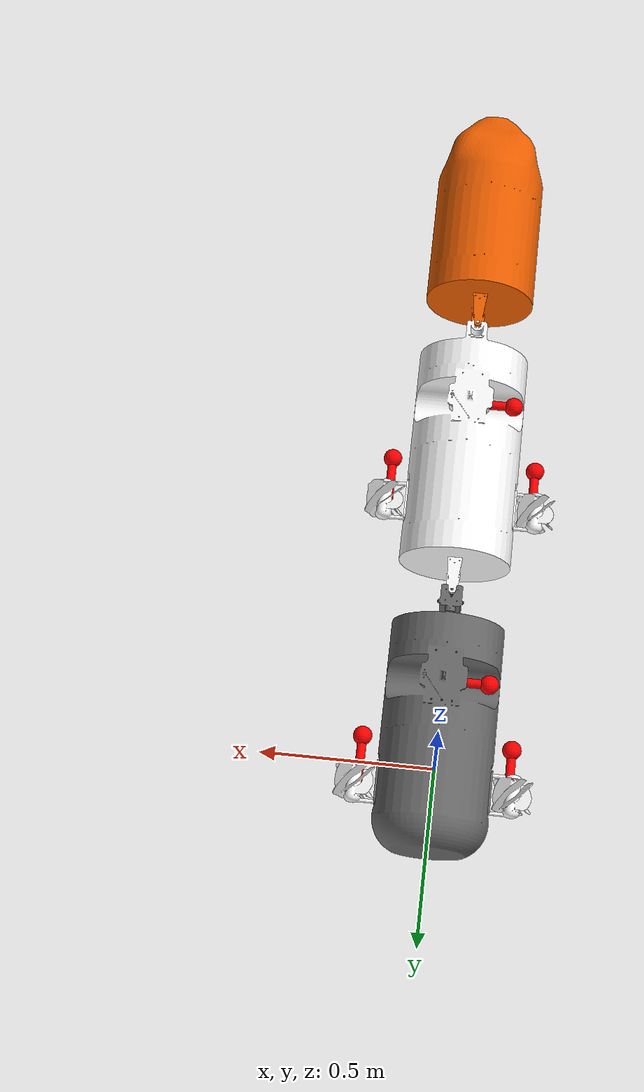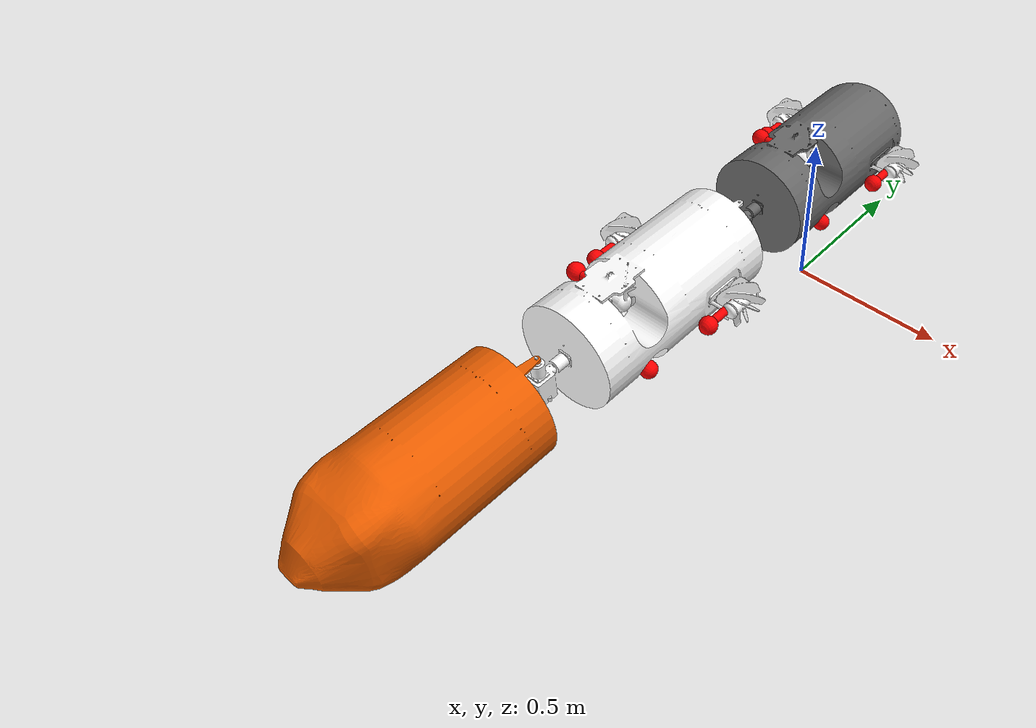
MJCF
<mujoco model="sw2urdf_ws2d_view">
  <compiler angle="radian" meshdir="meshes"/>
  <option timestep="0.002" gravity="0 0 0" density="1000" viscosity="0.0009" integrator="implicitfast"/>

  <visual>
    <global offwidth="1280" offheight="720"/>
  </visual>

  <default>
    <joint damping="0.02" armature="0.0001"/>
    <geom friction="0.8 0.02 0.001"/>
  </default>

  <asset>
    <mesh name="backDrivenCabin_mesh" file="backDrivenCabin.STL"/>
    <mesh name="frontDrivenCabin_mesh" file="frontDrivenCabin.STL"/>
    <mesh name="headCabin_mesh" file="headCabin.STL"/>
    <mesh name="FR_mesh" file="FR.STL"/>
    <mesh name="FL_mesh" file="FL.STL"/>
    <mesh name="FU_mesh" file="FU.STL"/>
    <mesh name="FD_mesh" file="FD.STL"/>
    <mesh name="BR_mesh" file="BR.STL"/>
    <mesh name="BL_mesh" file="BL.STL"/>
    <mesh name="BU_mesh" file="BU.STL"/>
    <mesh name="BD_mesh" file="BD.STL"/>
    <material name="backDrivenCabin_mat" rgba="0.411764705882353 0.411764705882353 0.411764705882353 1"/>
    <material name="frontDrivenCabin_mat" rgba="1 1 1 1"/>
    <material name="headCabin_mat" rgba="0.933333333333333 0.372549019607843 0 1"/>
    <material name="FR_mat" rgba="1 1 1 1"/>
    <material name="FL_mat" rgba="1 1 1 1"/>
    <material name="FU_mat" rgba="1 1 1 1"/>
    <material name="FD_mat" rgba="1 1 1 1"/>
    <material name="BR_mat" rgba="1 1 1 1"/>
    <material name="BL_mat" rgba="1 1 1 1"/>
    <material name="BU_mat" rgba="1 1 1 1"/>
    <material name="BD_mat" rgba="1 1 1 1"/>
    <texture name="grid" type="2d" builtin="checker" width="512" height="512"
             rgb1="0.18 0.22 0.27" rgb2="0.28 0.34 0.40"/>
    <material name="grid" texture="grid" texrepeat="8 8" reflectance="0.15"/>
  </asset>

  <worldbody>
    <light pos="0 -4 3" dir="0 1 -1" diffuse="0.8 0.8 0.8"/>
    <camera name="view" pos="0.8 -3.0 1.2" xyaxes="0.96 0.28 0 -0.12 0.42 0.90"/>
    <body name="backDrivenCabin" pos="0 0 0.45">
      <freejoint/>
      <inertial pos="-1.58703085886e-07 -0.0462855357368 -0.000838936474934"
                mass="5.94333504291"
                fullinertia="0.0506503044463 0.0787556572438 0.060882315016 4.3394112654e-08 -0.000278613283706 -4.43469112914e-06"/>
      <geom name="backDrivenCabin_visual" type="mesh" mesh="backDrivenCabin_mesh"
            material="backDrivenCabin_mat" contype="0" conaffinity="0"/>
      <geom name="backDrivenCabin_collision" type="mesh" mesh="backDrivenCabin_mesh"
            rgba="0.6 0.6 0.6 0.18"/>
      <body name="frontDrivenCabin" pos="0 -0.388 0" quat="1 0 0 0">
        <joint name="J1" type="hinge" axis="0 0 1" limited="false"/>
        <inertial pos="-1.63127334655e-07 -0.419439622488 0.00195154287583"
                  mass="6.28907190774"
                  fullinertia="0.0538005603257 0.0847113379619 0.0639791683968 4.33958813501e-08 -0.000278613283706 -4.25365720591e-06"/>
        <geom name="frontDrivenCabin_visual" type="mesh" mesh="frontDrivenCabin_mesh"
              material="frontDrivenCabin_mat" contype="0" conaffinity="0"/>
        <geom name="frontDrivenCabin_collision" type="mesh" mesh="frontDrivenCabin_mesh"
              rgba="0.6 0.6 0.6 0.18"/>
        <body name="headCabin" pos="0 -0.776 0" quat="0.707105482511 0.707108079859 0 0">
          <joint name="J2" type="hinge" axis="0 1 0" limited="false"/>
          <inertial pos="2.8267095895e-06 0.00500867328442 0.326719213717"
                    mass="4.40387857645"
                    fullinertia="0.057456177876 0.0574181363968 0.0780729338671 1.99081524582e-07 -1.35519957731e-07 1.24168050548e-07"/>
          <geom name="headCabin_visual" type="mesh" mesh="headCabin_mesh"
                material="headCabin_mat" contype="0" conaffinity="0"/>
          <geom name="headCabin_collision" type="mesh" mesh="headCabin_mesh"
                rgba="0.6 0.6 0.6 0.18"/>
        </body>
        <body name="FR" pos="0.19499977134 -0.248658356703 0.00251455813324" quat="-0.49963721069 0.49963721069 -0.500362526269 -0.500362526269">
        <site name="FR_site" pos="0 0 0" type="sphere" size="0.001" rgba="0 1 1 0"/>
        <site name="FR_thrust_axis" pos="0 0 -0.12" type="sphere" size="0.025" rgba="1 0 0 1"/>
        <geom name="FR_thrust_axis_marker" type="capsule" fromto="0 0 0 0 0 -0.12" size="0.012"
              rgba="1 0 0 1" contype="0" conaffinity="0"/>
          <inertial pos="2.67719476335e-06 -0.00821452737266 0.00191068038065"
                    mass="0.163699075202"
                    fullinertia="0.00012995415944 0.000119854046884 9.74198043808e-05 -1.46424862866e-08 -6.27270268619e-12 -1.94024404784e-08"/>
          <geom name="FR_visual" type="mesh" mesh="FR_mesh"
                material="FR_mat" contype="0" conaffinity="0"/>
          <geom name="FR_collision" type="mesh" mesh="FR_mesh"
                rgba="0.6 0.6 0.6 0.18"/>
        </body>
        <body name="FL" pos="-0.195000249703 -0.248658356703 0.00248554551771" quat="0.500362526269 -0.500362526269 -0.49963721069 -0.49963721069">
        <site name="FL_site" pos="0 0 0" type="sphere" size="0.001" rgba="0 1 1 0"/>
        <site name="FL_thrust_axis" pos="0 0 -0.12" type="sphere" size="0.025" rgba="1 0 0 1"/>
        <geom name="FL_thrust_axis_marker" type="capsule" fromto="0 0 0 0 0 -0.12" size="0.012"
              rgba="1 0 0 1" contype="0" conaffinity="0"/>
          <inertial pos="2.67719476338e-06 -0.00821452737266 0.00191068038065"
                    mass="0.163699075202"
                    fullinertia="0.00012995415944 0.000119854046884 9.74198043808e-05 -1.46424862866e-08 -6.2727024971e-12 -1.94024404785e-08"/>
          <geom name="FL_visual" type="mesh" mesh="FL_mesh"
                material="FL_mat" contype="0" conaffinity="0"/>
          <geom name="FL_collision" type="mesh" mesh="FL_mesh"
                rgba="0.6 0.6 0.6 0.18"/>
        </body>
        <body name="FU" pos="-0.00100023918168 -0.51217286301 -0.0949999376529" quat="0.49963721069 -0.500362526269 -0.49963721069 0.500362526269">
        <site name="FU_site" pos="0 0 0" type="sphere" size="0.001" rgba="0 1 1 0"/>
        <site name="FU_thrust_axis" pos="0 0 -0.12" type="sphere" size="0.025" rgba="1 0 0 1"/>
        <geom name="FU_thrust_axis_marker" type="capsule" fromto="0 0 0 0 0 -0.12" size="0.012"
              rgba="1 0 0 1" contype="0" conaffinity="0"/>
          <inertial pos="2.67719476321e-06 -0.00821452737266 0.00191068038065"
                    mass="0.163699075202"
                    fullinertia="0.00012995415944 0.000119854046884 9.74198043808e-05 -1.46424862852e-08 -6.27270220426e-12 -1.94024404776e-08"/>
          <geom name="FU_visual" type="mesh" mesh="FU_mesh"
                material="FU_mat" contype="0" conaffinity="0"/>
          <geom name="FU_collision" type="mesh" mesh="FU_mesh"
                rgba="0.6 0.6 0.6 0.18"/>
        </body>
        <body name="FD" pos="0.000999760818305 -0.51217286301 0.100000041304" quat="0.49963721069 0.500362526269 0.49963721069 0.500362526269">
        <site name="FD_site" pos="0 0 0" type="sphere" size="0.001" rgba="0 1 1 0"/>
        <site name="FD_thrust_axis" pos="0 0 -0.12" type="sphere" size="0.025" rgba="1 0 0 1"/>
        <geom name="FD_thrust_axis_marker" type="capsule" fromto="0 0 0 0 0 -0.12" size="0.012"
              rgba="1 0 0 1" contype="0" conaffinity="0"/>
          <inertial pos="2.67719476299e-06 -0.00821452737266 0.00191068038065"
                    mass="0.163699075202"
                    fullinertia="0.00012995415944 0.000119854046884 9.74198043808e-05 -1.46424862853e-08 -6.27270197162e-12 -1.94024404767e-08"/>
          <geom name="FD_visual" type="mesh" mesh="FD_mesh"
                material="FD_mat" contype="0" conaffinity="0"/>
          <geom name="FD_collision" type="mesh" mesh="FD_mesh"
                rgba="0.6 0.6 0.6 0.18"/>
        </body>
      </body>
      <body name="BR" pos="0.195 0.13934 1.4506e-05" quat="-0.499628533982 0.499623022801 -0.500376695935 -0.500371187503">
        <site name="BR_site" pos="0 0 0" type="sphere" size="0.001" rgba="0 1 1 0"/>
        <site name="BR_thrust_axis" pos="0 0 -0.12" type="sphere" size="0.025" rgba="1 0 0 1"/>
        <geom name="BR_thrust_axis_marker" type="capsule" fromto="0 0 0 0 0 -0.12" size="0.012"
              rgba="1 0 0 1" contype="0" conaffinity="0"/>
        <inertial pos="2.62536934735e-06 -0.00821452729748 0.00191068038065"
                  mass="0.163699075202"
                  fullinertia="0.00012995415944 0.000119854046884 9.74198043808e-05 -1.46424862867e-08 -6.27270254963e-12 -1.94024404784e-08"/>
        <geom name="BR_visual" type="mesh" mesh="BR_mesh"
              material="BR_mat" contype="0" conaffinity="0"/>
        <geom name="BR_collision" type="mesh" mesh="BR_mesh"
              rgba="0.6 0.6 0.6 0.18"/>
      </body>
      <body name="BL" pos="-0.195 0.13934 -1.4506e-05" quat="0.500373022738 -0.500374860714 -0.499624860784 -0.499626696012">
        <site name="BL_site" pos="0 0 0" type="sphere" size="0.001" rgba="0 1 1 0"/>
        <site name="BL_thrust_axis" pos="0 0 -0.12" type="sphere" size="0.025" rgba="1 0 0 1"/>
        <geom name="BL_thrust_axis_marker" type="capsule" fromto="0 0 0 0 0 -0.12" size="0.012"
              rgba="1 0 0 1" contype="0" conaffinity="0"/>
        <inertial pos="2.72902017836e-06 -0.00821452744784 0.00191068038065"
                  mass="0.163699075202"
                  fullinertia="0.00012995415944 0.000119854046884 9.74198043808e-05 -1.46424862866e-08 -6.27270264119e-12 -1.94024404785e-08"/>
        <geom name="BL_visual" type="mesh" mesh="BL_mesh"
              material="BL_mat" contype="0" conaffinity="0"/>
        <geom name="BL_collision" type="mesh" mesh="BL_mesh"
              rgba="0.6 0.6 0.6 0.18"/>
      </body>
      <body name="BU" pos="-0.0010002 -0.12417 -0.0975" quat="0.499635380583 -0.50036251845 -0.499639056451 0.50036251845">
        <site name="BU_site" pos="0 0 0" type="sphere" size="0.001" rgba="0 1 1 0"/>
        <site name="BU_thrust_axis" pos="0 0 -0.12" type="sphere" size="0.025" rgba="1 0 0 1"/>
        <geom name="BU_thrust_axis_marker" type="capsule" fromto="0 0 0 0 0 -0.12" size="0.012"
              rgba="1 0 0 1" contype="0" conaffinity="0"/>
        <inertial pos="2.67719476318e-06 -0.00821452737266 0.00191068038065"
                  mass="0.163699075202"
                  fullinertia="0.00012995415944 0.000119854046884 9.74198043808e-05 -1.46424862855e-08 -6.27270248052e-12 -1.94024404775e-08"/>
        <geom name="BU_visual" type="mesh" mesh="BU_mesh"
              material="BU_mat" contype="0" conaffinity="0"/>
        <geom name="BU_collision" type="mesh" mesh="BU_mesh"
              rgba="0.6 0.6 0.6 0.18"/>
      </body>
      <body name="BD" pos="0.00099976081831 -0.12417286301 0.0975000413038" quat="0.49963721069 0.500362526269 0.49963721069 0.500362526269">
        <site name="BD_site" pos="0 0 0" type="sphere" size="0.001" rgba="0 1 1 0"/>
        <site name="BD_thrust_axis" pos="0 0 -0.12" type="sphere" size="0.025" rgba="1 0 0 1"/>
        <geom name="BD_thrust_axis_marker" type="capsule" fromto="0 0 0 0 0 -0.12" size="0.012"
              rgba="1 0 0 1" contype="0" conaffinity="0"/>
        <inertial pos="2.67719476303e-06 -0.00821452737266 0.00191068038065"
                  mass="0.163699075202"
                  fullinertia="0.00012995415944 0.000119854046884 9.74198043808e-05 -1.46424862848e-08 -6.27270250578e-12 -1.94024404779e-08"/>
        <geom name="BD_visual" type="mesh" mesh="BD_mesh"
              material="BD_mat" contype="0" conaffinity="0"/>
        <geom name="BD_collision" type="mesh" mesh="BD_mesh"
              rgba="0.6 0.6 0.6 0.18"/>
      </body>
    </body>
  </worldbody>
</mujoco>
